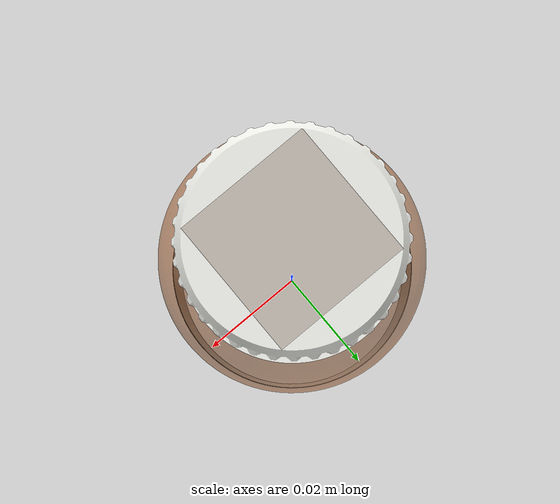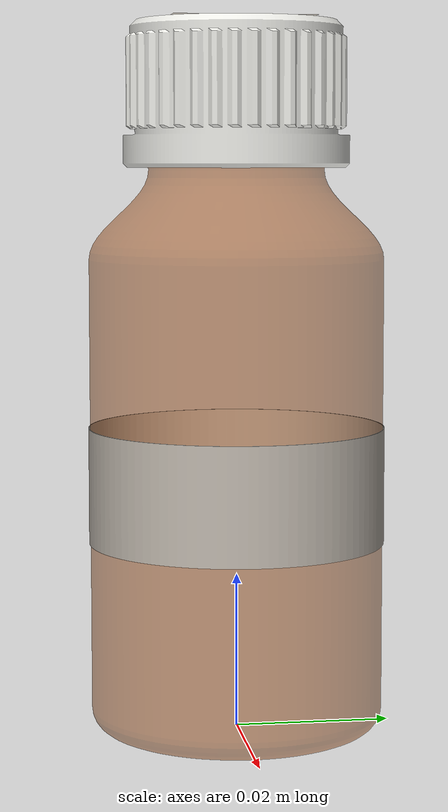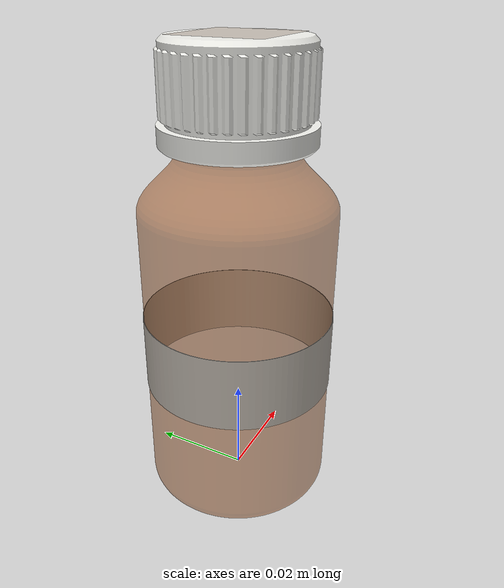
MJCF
<!-- Generated by tools/build_labelled_bottles.py. Phenylethyl alcohol (liquid),
     50 ml, marker 83, barcode 2004538539160.
     Origin bottom-centre, +Z up, the label's front facing -Y. -->
<mujoco model="SMP-0084_open">
  <!-- Generated by scripts/generate_open_vessels.py; do not edit by hand. -->
  <asset>
    <mesh name="flask_50ml_glass" file="../labelled_bottles/meshes/flask_50ml_glass.obj" inertia="exact"/>
    <mesh name="flask_50ml_cap" file="../labelled_bottles/meshes/flask_50ml_cap.obj" inertia="exact"/>
    <mesh name="flask_50ml_label" file="../labelled_bottles/meshes/flask_50ml_label.obj" inertia="shell"/>
    <mesh name="flask_50ml_label_back" file="../labelled_bottles/meshes/flask_50ml_label_back.obj" inertia="shell"/>
    <mesh name="flask_50ml_cap_label" file="../labelled_bottles/meshes/flask_50ml_cap_label.obj" inertia="shell"/>
    <texture name="label" type="2d" file="../labelled_bottles/textures/SMP-0084.png"/>
    <material name="label" texture="label" specular="0.05" shininess="0.1"/>
    <texture name="cap_label" type="2d" file="../labelled_bottles/textures/SMP-0084_cap.png"/>
    <material name="cap_label" texture="cap_label" specular="0.05" shininess="0.1"/>
  </asset>
  <worldbody>
    <body name="SMP-0084">
      <inertial pos="-0.00001 0.00000 0.04050" mass="0.05249"
                diaginertia="4.599e-05 4.599e-05 1.353e-05"/>
      <geom name="glass" type="mesh" mesh="flask_50ml_glass" rgba="0.620 0.280 0.050 0.500" contype="0" conaffinity="0" mass="0"/>
      <geom name="cap" type="mesh" mesh="flask_50ml_cap" rgba="0.930 0.930 0.910 1.000" density="900"/>
      <geom name="label" type="mesh" mesh="flask_50ml_label" material="label" contype="0" conaffinity="0" mass="0"/>
      <geom name="label_back" type="mesh" mesh="flask_50ml_label_back" rgba="0.950 0.950 0.930 1" contype="0" conaffinity="0" mass="0"/>
      <geom name="cap_label" type="mesh" mesh="flask_50ml_cap_label" material="cap_label" contype="0" conaffinity="0" mass="0"/>
      <geom name="body_00" type="box" pos="0.01802 0.00000 0.03426"
            size="0.00100 0.00590 0.03126" euler="0 0 0.000"
            rgba="0 0 0 0" mass="0" group="3"/>
      <geom name="body_01" type="box" pos="0.01561 0.00901 0.03426"
            size="0.00100 0.00590 0.03126" euler="0 0 30.000"
            rgba="0 0 0 0" mass="0" group="3"/>
      <geom name="body_02" type="box" pos="0.00901 0.01561 0.03426"
            size="0.00100 0.00590 0.03126" euler="0 0 60.000"
            rgba="0 0 0 0" mass="0" group="3"/>
      <geom name="body_03" type="box" pos="0.00000 0.01802 0.03426"
            size="0.00100 0.00590 0.03126" euler="0 0 90.000"
            rgba="0 0 0 0" mass="0" group="3"/>
      <geom name="body_04" type="box" pos="-0.00901 0.01561 0.03426"
            size="0.00100 0.00590 0.03126" euler="0 0 120.000"
            rgba="0 0 0 0" mass="0" group="3"/>
      <geom name="body_05" type="box" pos="-0.01561 0.00901 0.03426"
            size="0.00100 0.00590 0.03126" euler="0 0 150.000"
            rgba="0 0 0 0" mass="0" group="3"/>
      <geom name="body_06" type="box" pos="-0.01802 0.00000 0.03426"
            size="0.00100 0.00590 0.03126" euler="0 0 180.000"
            rgba="0 0 0 0" mass="0" group="3"/>
      <geom name="body_07" type="box" pos="-0.01561 -0.00901 0.03426"
            size="0.00100 0.00590 0.03126" euler="0 0 210.000"
            rgba="0 0 0 0" mass="0" group="3"/>
      <geom name="body_08" type="box" pos="-0.00901 -0.01561 0.03426"
            size="0.00100 0.00590 0.03126" euler="0 0 240.000"
            rgba="0 0 0 0" mass="0" group="3"/>
      <geom name="body_09" type="box" pos="-0.00000 -0.01802 0.03426"
            size="0.00100 0.00590 0.03126" euler="0 0 270.000"
            rgba="0 0 0 0" mass="0" group="3"/>
      <geom name="body_10" type="box" pos="0.00901 -0.01561 0.03426"
            size="0.00100 0.00590 0.03126" euler="0 0 300.000"
            rgba="0 0 0 0" mass="0" group="3"/>
      <geom name="body_11" type="box" pos="0.01561 -0.00901 0.03426"
            size="0.00100 0.00590 0.03126" euler="0 0 330.000"
            rgba="0 0 0 0" mass="0" group="3"/>
      <geom name="shoulder_00" type="box" pos="0.01461 0.00000 0.06998"
            size="0.00100 0.00478 0.00446" euler="0 0 0.000"
            rgba="0 0 0 0" mass="0" group="3"/>
      <geom name="shoulder_01" type="box" pos="0.01265 0.00731 0.06998"
            size="0.00100 0.00478 0.00446" euler="0 0 30.000"
            rgba="0 0 0 0" mass="0" group="3"/>
      <geom name="shoulder_02" type="box" pos="0.00731 0.01265 0.06998"
            size="0.00100 0.00478 0.00446" euler="0 0 60.000"
            rgba="0 0 0 0" mass="0" group="3"/>
      <geom name="shoulder_03" type="box" pos="0.00000 0.01461 0.06998"
            size="0.00100 0.00478 0.00446" euler="0 0 90.000"
            rgba="0 0 0 0" mass="0" group="3"/>
      <geom name="shoulder_04" type="box" pos="-0.00731 0.01265 0.06998"
            size="0.00100 0.00478 0.00446" euler="0 0 120.000"
            rgba="0 0 0 0" mass="0" group="3"/>
      <geom name="shoulder_05" type="box" pos="-0.01265 0.00731 0.06998"
            size="0.00100 0.00478 0.00446" euler="0 0 150.000"
            rgba="0 0 0 0" mass="0" group="3"/>
      <geom name="shoulder_06" type="box" pos="-0.01461 0.00000 0.06998"
            size="0.00100 0.00478 0.00446" euler="0 0 180.000"
            rgba="0 0 0 0" mass="0" group="3"/>
      <geom name="shoulder_07" type="box" pos="-0.01265 -0.00731 0.06998"
            size="0.00100 0.00478 0.00446" euler="0 0 210.000"
            rgba="0 0 0 0" mass="0" group="3"/>
      <geom name="shoulder_08" type="box" pos="-0.00731 -0.01265 0.06998"
            size="0.00100 0.00478 0.00446" euler="0 0 240.000"
            rgba="0 0 0 0" mass="0" group="3"/>
      <geom name="shoulder_09" type="box" pos="-0.00000 -0.01461 0.06998"
            size="0.00100 0.00478 0.00446" euler="0 0 270.000"
            rgba="0 0 0 0" mass="0" group="3"/>
      <geom name="shoulder_10" type="box" pos="0.00731 -0.01265 0.06998"
            size="0.00100 0.00478 0.00446" euler="0 0 300.000"
            rgba="0 0 0 0" mass="0" group="3"/>
      <geom name="shoulder_11" type="box" pos="0.01265 -0.00731 0.06998"
            size="0.00100 0.00478 0.00446" euler="0 0 330.000"
            rgba="0 0 0 0" mass="0" group="3"/>
      <geom name="neck_00" type="box" pos="0.01120 0.00000 0.08272"
            size="0.00100 0.00367 0.00828" euler="0 0 0.000"
            rgba="0 0 0 0" mass="0" group="3"/>
      <geom name="neck_01" type="box" pos="0.00970 0.00560 0.08272"
            size="0.00100 0.00367 0.00828" euler="0 0 30.000"
            rgba="0 0 0 0" mass="0" group="3"/>
      <geom name="neck_02" type="box" pos="0.00560 0.00970 0.08272"
            size="0.00100 0.00367 0.00828" euler="0 0 60.000"
            rgba="0 0 0 0" mass="0" group="3"/>
      <geom name="neck_03" type="box" pos="0.00000 0.01120 0.08272"
            size="0.00100 0.00367 0.00828" euler="0 0 90.000"
            rgba="0 0 0 0" mass="0" group="3"/>
      <geom name="neck_04" type="box" pos="-0.00560 0.00970 0.08272"
            size="0.00100 0.00367 0.00828" euler="0 0 120.000"
            rgba="0 0 0 0" mass="0" group="3"/>
      <geom name="neck_05" type="box" pos="-0.00970 0.00560 0.08272"
            size="0.00100 0.00367 0.00828" euler="0 0 150.000"
            rgba="0 0 0 0" mass="0" group="3"/>
      <geom name="neck_06" type="box" pos="-0.01120 0.00000 0.08272"
            size="0.00100 0.00367 0.00828" euler="0 0 180.000"
            rgba="0 0 0 0" mass="0" group="3"/>
      <geom name="neck_07" type="box" pos="-0.00970 -0.00560 0.08272"
            size="0.00100 0.00367 0.00828" euler="0 0 210.000"
            rgba="0 0 0 0" mass="0" group="3"/>
      <geom name="neck_08" type="box" pos="-0.00560 -0.00970 0.08272"
            size="0.00100 0.00367 0.00828" euler="0 0 240.000"
            rgba="0 0 0 0" mass="0" group="3"/>
      <geom name="neck_09" type="box" pos="-0.00000 -0.01120 0.08272"
            size="0.00100 0.00367 0.00828" euler="0 0 270.000"
            rgba="0 0 0 0" mass="0" group="3"/>
      <geom name="neck_10" type="box" pos="0.00560 -0.00970 0.08272"
            size="0.00100 0.00367 0.00828" euler="0 0 300.000"
            rgba="0 0 0 0" mass="0" group="3"/>
      <geom name="neck_11" type="box" pos="0.00970 -0.00560 0.08272"
            size="0.00100 0.00367 0.00828" euler="0 0 330.000"
            rgba="0 0 0 0" mass="0" group="3"/>
      <geom name="base" type="cylinder" pos="0 0 0.00150"
            size="0.01902 0.00150"
            rgba="0 0 0 0" mass="0" group="3"/>
      <geom name="liquid" type="cylinder" pos="0 0 0.01689"
            size="0.01702 0.01389" rgba="0.86 0.62 0.18 0.55"
            contype="0" conaffinity="0" mass="0"/>
      <site name="mouth" pos="0 0 0.09100" size="0.00920 0.001" type="cylinder"
            rgba="0.2 0.7 0.9 0.25" group="4"/>
    </body>
  </worldbody>
</mujoco>
